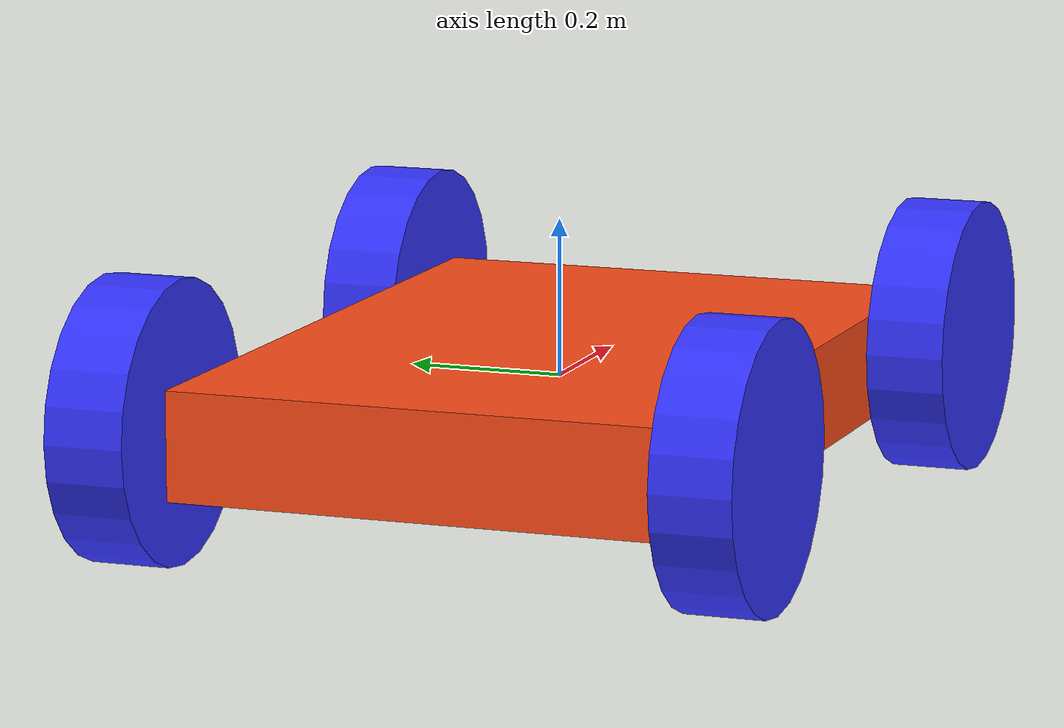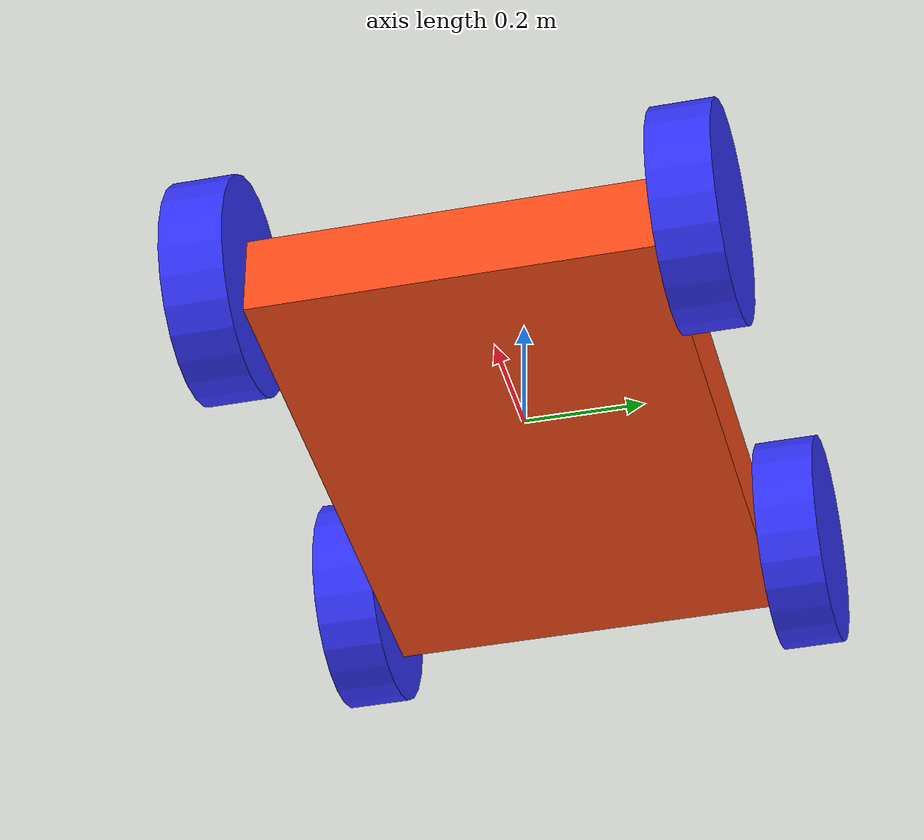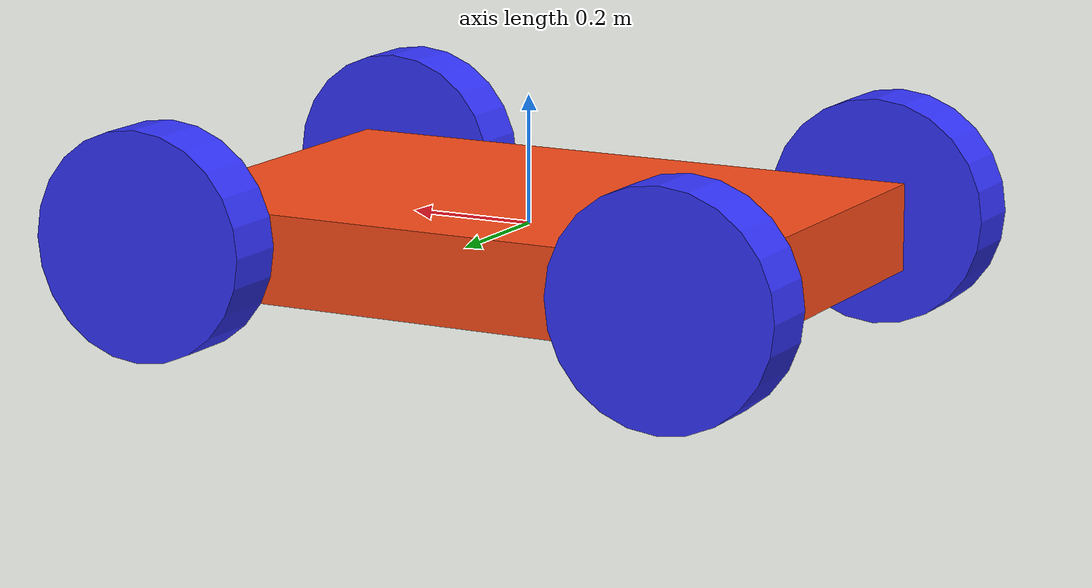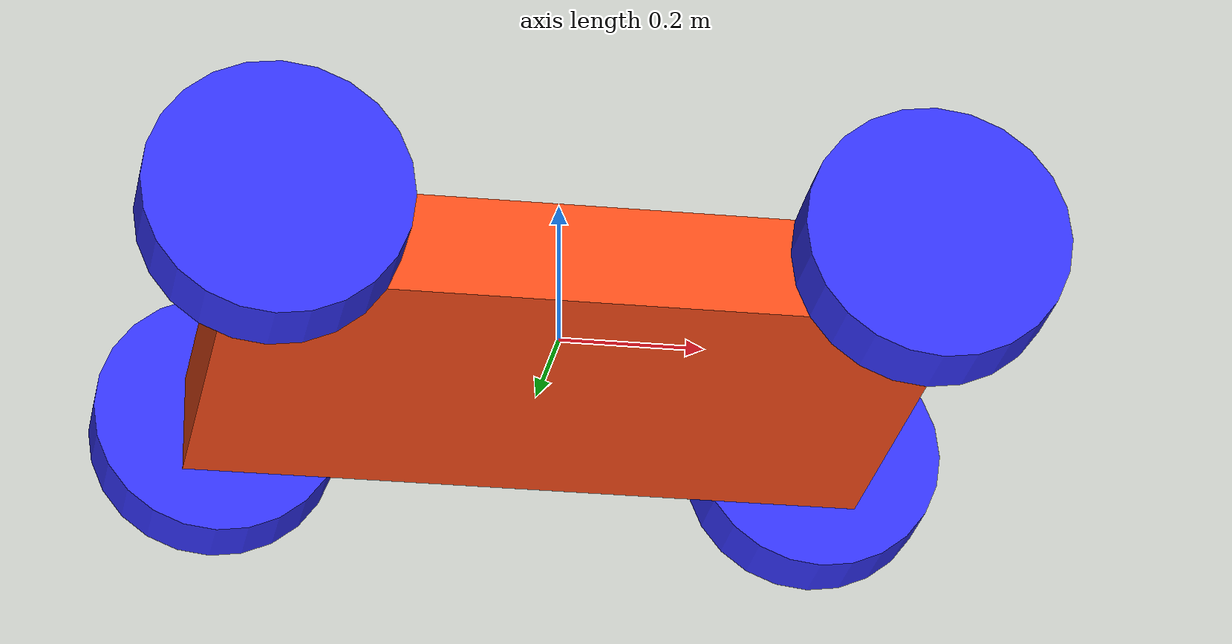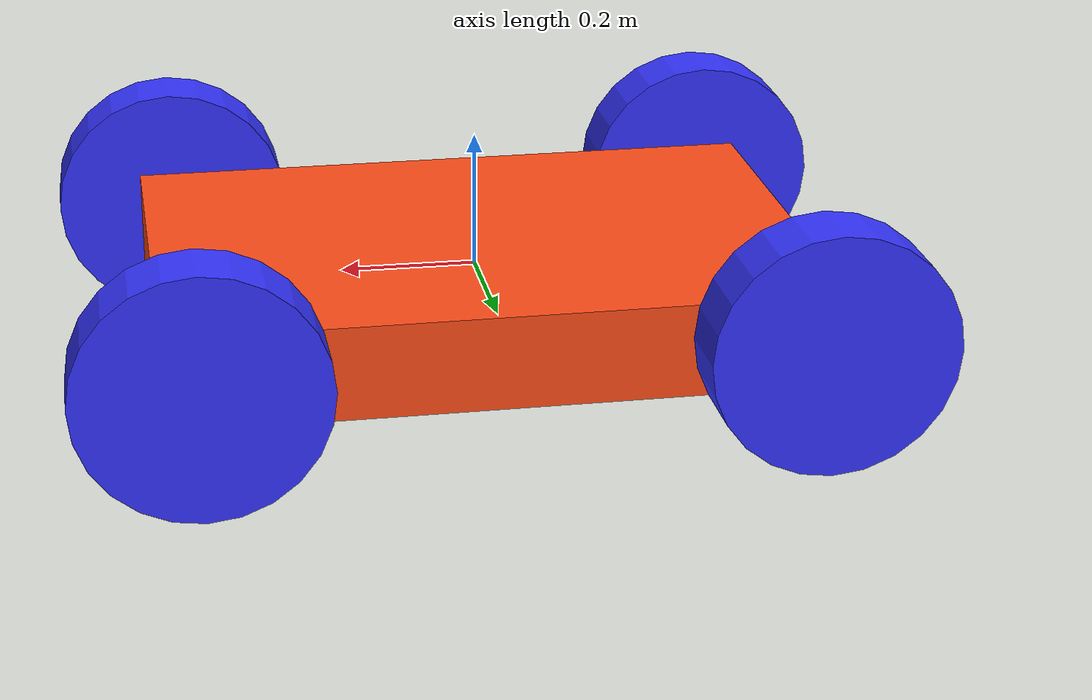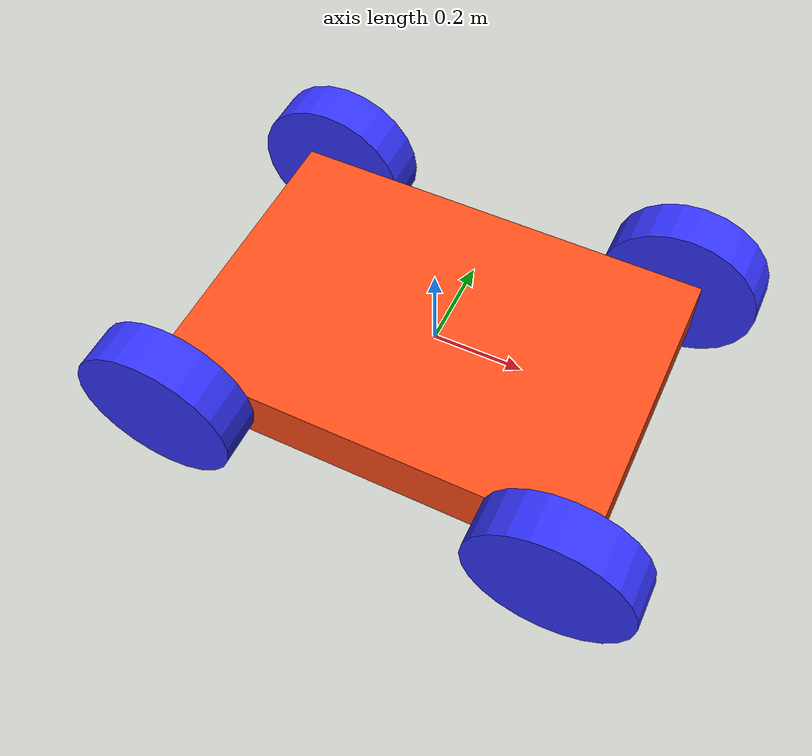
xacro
<?xml version="1.0"?>
<robot xmlns:xacro="http://www.ros.org/wiki/xacro" >

    <xacro:include filename="inertial_macros.xacro"/>

    <!-- Original chassis properties (restored for proper turning) -->
    <xacro:property name="chassis_length" value="0.9652"/>      <!-- 38 in -->
    <xacro:property name="chassis_width" value="0.6604"/>       <!-- 26 in - original width for proper turning -->
    <xacro:property name="chassis_height" value="0.138"/>       <!-- kept original unless specified -->
    <xacro:property name="chassis_mass" value="14.608"/>        <!-- full chassis -->

    <!-- Original wheel properties -->
    <xacro:property name="wheel_radius" value="0.1778"/>        <!-- 7 in -->
    <xacro:property name="wheel_thickness" value="0.1016"/>     <!-- 4 in -->
    <xacro:property name="wheel_mass" value="1.977"/>           <!-- wheel + hub + gearbox + motor -->

    <!-- Original wheel offsets (restored for proper turning) -->
    <xacro:property name="wheel_offset_x" value="0.4826"/>      <!-- half of chassis_length -->
    <xacro:property name="wheel_offset_y" value="0.3810"/>      <!-- original offset for proper wheel separation -->
    <xacro:property name="wheel_offset_z" value="0.0889"/>      <!-- ~3.5 in off ground -->

    <!-- Global contact/friction parameters -->
    <xacro:property name="wheel_mu" value="0.8"/>
    <xacro:property name="wheel_mu2" value="0.8"/>
    <xacro:property name="wheel_kp" value="1000000.0"/>
    <xacro:property name="wheel_kd" value="1.0"/>
    <xacro:property name="wheel_min_depth" value="0.001"/>
    <xacro:property name="wheel_slip1" value="0.01"/>
    <xacro:property name="wheel_slip2" value="0.01"/>

    <material name="white">
        <color rgba="1 1 1 1" />
    </material>

    <material name="orange">
        <color rgba="1 0.3 0.1 1"/>
    </material>

    <material name="blue">
        <color rgba="0.2 0.2 1 1"/>
    </material>

    <material name="black">
        <color rgba="0 0 0 1"/>
    </material>

    <material name="red">
        <color rgba="1 0 0 1"/>
    </material>

    <!-- BASE LINK -->
    <link name="base_link">
    </link>

    <!-- BASE_FOOTPRINT LINK -->
    <joint name="base_footprint_joint" type="fixed">
        <parent link="base_link"/>
        <child link="base_footprint"/>
        <origin xyz="0 0 0" rpy="0 0 0"/>
    </joint>

    <link name="base_footprint">
    </link>

    <!-- CHASSIS LINK -->
    <joint name="chassis_joint" type="fixed">
        <parent link="base_link"/>
        <child link="chassis"/>
        <origin xyz="${-wheel_offset_x} 0 ${-wheel_offset_z}"/>
    </joint>

    <link name="chassis">
        <visual>
            <origin xyz="${chassis_length/2} 0 ${chassis_height/2}"/>
            <geometry>
                <box size="${chassis_length} ${chassis_width} ${chassis_height}"/>
            </geometry>
            <material name="orange"/>
        </visual>
        <collision>
            <origin xyz="${chassis_length/2} 0 ${chassis_height/2}"/>
            <geometry>
                <box size="${chassis_length} ${chassis_width} ${chassis_height}"/>
            </geometry>
        </collision>
        <xacro:inertial_box mass="${chassis_mass}" x="${chassis_length}" y="${chassis_width}" z="${chassis_height}">
            <origin xyz="${chassis_length/2} 0 ${chassis_height/2}" rpy="0 0 0"/>
        </xacro:inertial_box>
    </link>

    <gazebo reference="chassis">
        <material>Gazebo/Orange</material>
    </gazebo>

    <!-- LEFT FRONT WHEEL LINK  -->
    <joint name="left_front_wheel_joint" type="continuous">
        <parent link="base_link"/>
        <child link="left_front_wheel"/>
        <origin xyz="${wheel_offset_x - 0.05} ${wheel_offset_y} 0" rpy="-${pi/2} 0 0" />
        <axis xyz="0 0 1"/>
        <dynamics damping="0.7" friction="0.3"/>
    </joint>

    <link name="left_front_wheel">
        <visual>
            <geometry>
                <cylinder radius="${wheel_radius}" length="${wheel_thickness}"/>
            </geometry>
            <material name="blue"/>
        </visual>
        <collision>
            <geometry>
                <cylinder radius="${wheel_radius}" length="${wheel_thickness}"/>
            </geometry>
        </collision>
        <xacro:inertial_cylinder mass="${wheel_mass}" length="${wheel_thickness}" radius="${wheel_radius}">
            <origin xyz="0 0 0" rpy="0 0 0"/>
        </xacro:inertial_cylinder>
    </link>

    <gazebo reference="left_front_wheel">
        <material>Gazebo/Blue</material>
        <mu>${wheel_mu}</mu>
        <mu2>${wheel_mu2}</mu2>
        <fdir1>1 0 0</fdir1>
        <surface>
            <contact>
                <ode>
                    <kp>${wheel_kp}</kp>
                    <kd>${wheel_kd}</kd>
                    <min_depth>${wheel_min_depth}</min_depth>
                    <slip1>${wheel_slip1}</slip1>
                    <slip2>${wheel_slip2}</slip2>
                </ode>
            </contact>
            <friction>
                <ode>
                    <mu>${wheel_mu}</mu>
                    <mu2>${wheel_mu2}</mu2>
                    <fdir1>1 0 0</fdir1>
                </ode>
            </friction>
        </surface>
    </gazebo>

    <!-- RIGHT FRONT WHEEL LINK  -->
    <joint name="right_front_wheel_joint" type="continuous">
        <parent link="base_link"/>
        <child link="right_front_wheel"/>
        <origin xyz="${wheel_offset_x - 0.05} ${-wheel_offset_y} 0" rpy="${pi/2} 0 0" />
        <axis xyz="0 0 -1"/>
        <dynamics damping="0.7" friction="0.3"/>
    </joint>

    <link name="right_front_wheel">
        <visual>
            <geometry>
                <cylinder radius="${wheel_radius}" length="${wheel_thickness}"/>
            </geometry>
            <material name="blue"/>
        </visual>
        <collision>
            <geometry>
                <cylinder radius="${wheel_radius}" length="${wheel_thickness}"/>
            </geometry>
        </collision>
        <xacro:inertial_cylinder mass="${wheel_mass}" length="${wheel_thickness}" radius="${wheel_radius}">
            <origin xyz="0 0 0" rpy="0 0 0"/>
        </xacro:inertial_cylinder>
    </link>

    <gazebo reference="right_front_wheel">
        <material>Gazebo/Blue</material>
        <mu>${wheel_mu}</mu>
        <mu2>${wheel_mu2}</mu2>
        <fdir1>1 0 0</fdir1>
        <surface>
            <contact>
                <ode>
                    <kp>${wheel_kp}</kp>
                    <kd>${wheel_kd}</kd>
                    <min_depth>${wheel_min_depth}</min_depth>
                    <slip1>${wheel_slip1}</slip1>
                    <slip2>${wheel_slip2}</slip2>
                </ode>
            </contact>
            <friction>
                <ode>
                    <mu>${wheel_mu}</mu>
                    <mu2>${wheel_mu2}</mu2>
                    <fdir1>1 0 0</fdir1>
                </ode>
            </friction>
        </surface>
    </gazebo>

 <!-- LEFT REAR WHEEL LINK -->
    <joint name="left_wheel_joint" type="continuous">
        <parent link="base_link"/>
        <child link="left_wheel"/>
        <origin xyz="${-wheel_offset_x + 0.05} ${wheel_offset_y} 0" rpy="-${pi/2} 0 0" />
        <axis xyz="0 0 1"/>
        <dynamics damping="0.7" friction="0.3"/>
    </joint>

    <link name="left_wheel">
        <visual>
            <geometry>
                <cylinder radius="${wheel_radius}" length="${wheel_thickness}"/>
            </geometry>
            <material name="blue"/>
        </visual>
        <collision>
            <geometry>
                <cylinder radius="${wheel_radius}" length="${wheel_thickness}"/>
            </geometry>
        </collision>
        <xacro:inertial_cylinder mass="${wheel_mass}" length="${wheel_thickness}" radius="${wheel_radius}">
            <origin xyz="0 0 0" rpy="0 0 0"/>
        </xacro:inertial_cylinder>
    </link>

    <gazebo reference="left_wheel">
        <material>Gazebo/Blue</material>
        <mu>${wheel_mu}</mu>
        <mu2>${wheel_mu2}</mu2>
        <fdir1>1 0 0</fdir1>
        <surface>
            <contact>
                <ode>
                    <kp>${wheel_kp}</kp>
                    <kd>${wheel_kd}</kd>
                    <min_depth>${wheel_min_depth}</min_depth>
                    <slip1>${wheel_slip1}</slip1>
                    <slip2>${wheel_slip2}</slip2>
                </ode>
            </contact>
            <friction>
                <ode>
                    <mu>${wheel_mu}</mu>
                    <mu2>${wheel_mu2}</mu2>
                    <fdir1>1 0 0</fdir1>
                </ode>
            </friction>
        </surface>
    </gazebo>

    <!-- RIGHT REAR WHEEL LINK  -->
    <joint name="right_wheel_joint" type="continuous">
        <parent link="base_link"/>
        <child link="right_wheel"/>
        <origin xyz="${-wheel_offset_x + 0.05} ${-wheel_offset_y} 0" rpy="${pi/2} 0 0" />
        <axis xyz="0 0 -1"/>
        <dynamics damping="0.7" friction="0.3"/>
    </joint>

    <link name="right_wheel">
        <visual>
            <geometry>
                <cylinder radius="${wheel_radius}" length="${wheel_thickness}"/>
            </geometry>
            <material name="blue"/>
        </visual>
        <collision>
            <geometry>
                <cylinder radius="${wheel_radius}" length="${wheel_thickness}"/>
            </geometry>
        </collision>
        <xacro:inertial_cylinder mass="${wheel_mass}" length="${wheel_thickness}" radius="${wheel_radius}">
            <origin xyz="0 0 0" rpy="0 0 0"/>
        </xacro:inertial_cylinder>
    </link>

    <gazebo reference="right_wheel">
        <material>Gazebo/Blue</material>
        <mu>${wheel_mu}</mu>
        <mu2>${wheel_mu2}</mu2>
        <fdir1>1 0 0</fdir1>
        <surface>
            <contact>
                <ode>
                    <kp>${wheel_kp}</kp>
                    <kd>${wheel_kd}</kd>
                    <min_depth>${wheel_min_depth}</min_depth>
                    <slip1>${wheel_slip1}</slip1>
                    <slip2>${wheel_slip2}</slip2>
                </ode>
            </contact>
            <friction>
                <ode>
                    <mu>${wheel_mu}</mu>
                    <mu2>${wheel_mu2}</mu2>
                    <fdir1>1 0 0</fdir1>
                </ode>
            </friction>
        </surface>
    </gazebo>

</robot>
